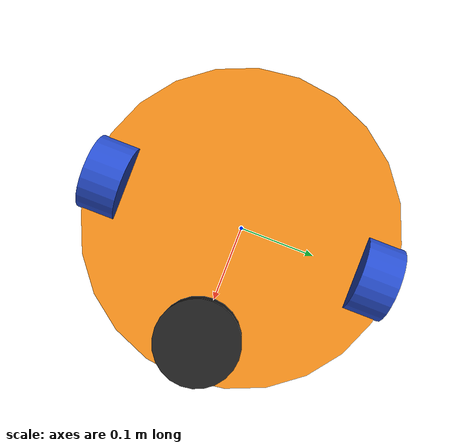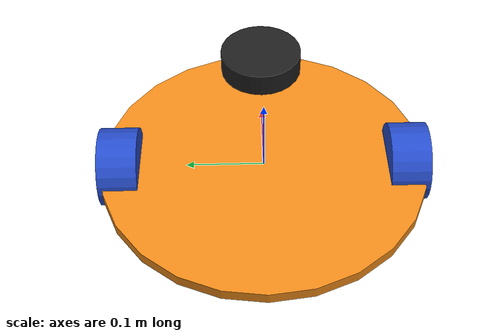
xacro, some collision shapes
<?xml version='1.0'?>

<robot name="jbot" xmlns:xacro="http://www.ros.org/wiki/xacro">

  <xacro:property name="cameraSize" value="0.05"/>
  <xacro:property name="cameraMass" value="0.1"/>

  <xacro:include filename="$(find jbot_description)/urdf/jbot.gazebo" />
  <xacro:include filename="$(find jbot_description)/urdf/materials.xacro" />
  <xacro:include filename="$(find jbot_description)/urdf/macros.xacro" />

  <link name='base_link'>
    <pose>0 0 0.05 0 0 0</pose>

    <inertial>
      <mass value="3.0"/>
      <origin xyz="0.0 0 0.05" rpy=" 0 0 0"/>
      <inertia
          ixx="0.1" ixy="0" ixz="0"
          iyy="0.1" iyz="0"
          izz="0.1"/>
    </inertial>

    <collision name='collision'>
      <geometry>
        <cylinder radius="0.21" length="0.015"/>
      </geometry>
    </collision>

    <visual name='base_link_visual'>
      <origin xyz="0 0 0" rpy=" 0 0 0"/>
      <geometry>
        <cylinder radius="0.21" length="0.015"/>
      </geometry>
    </visual>

    <collision name='caster_collision'>
      <origin xyz="-0.15 0  -0.025" rpy=" 0 0 0"/>
      <geometry>
        <sphere radius="0.025"/>
      </geometry>
      <surface>
        <friction>
          <ode>
            <mu>0</mu>
            <mu2>0</mu2>
            <slip1>1.0</slip1>
            <slip2>1.0</slip2>
          </ode>
        </friction>
      </surface>
    </collision>

    <visual name='caster_visual'>
      <origin xyz="-0.15 0 -0.025" rpy=" 0 0 0"/>
      <geometry>
        <sphere radius="0.025"/>
      </geometry>
    </visual>

    <collision name='caster_front_collision'>
      <origin xyz="0.15 0 -0.025" rpy=" 0 0 0"/>
      <geometry>
        <sphere radius="0.025"/>
      </geometry>
      <surface>
        <friction>
          <ode>
            <mu>0</mu>
            <mu2>0</mu2>
            <slip1>1.0</slip1>
            <slip2>1.0</slip2>
          </ode>
        </friction>
      </surface>
    </collision>

    <visual name='caster_front_visual'>
      <origin xyz="0.15 0 -0.025" rpy=" 0 0 0"/>
      <geometry>
        <sphere radius="0.025"/>
      </geometry>
    </visual>

  </link>

  <link name="left_wheel">
    <!--origin xyz="0.1 0.13 0.1" rpy="0 1.5707 1.5707"/-->
    <collision name="collision">
      <origin xyz="0 0 0" rpy="0 1.5707 1.5707"/>
      <geometry>
        <cylinder radius="0.05" length="0.05"/>
      </geometry>
    </collision>
    <visual name="left_wheel_visual">
      <origin xyz="0 0 0" rpy="0 1.5707 1.5707"/>
      <geometry>
        <cylinder radius="0.05" length="0.05"/>
      </geometry>
    </visual>
    <inertial>
      <origin xyz="0 0 0" rpy="0 1.5707 1.5707"/>
      <mass value="0.5"/>
      <inertia
        ixx=".1" ixy="0.0" ixz="0.0"
        iyy=".1" iyz="0.0"
        izz=".1"/>
    </inertial>
  </link>

  <link name="right_wheel">
    <!--origin xyz="0.1 -0.13 0.1" rpy="0 1.5707 1.5707"/-->
    <collision name="collision">
      <origin xyz="0 0 0" rpy="0 1.5707 1.5707"/>
      <geometry>
        <cylinder radius="0.05" length="0.05"/>
      </geometry>
    </collision>
    <visual name="right_wheel_visual">
      <origin xyz="0 0 0" rpy="0 1.5707 1.5707"/>
      <geometry>
        <cylinder radius="0.05" length="0.05"/>
      </geometry>
    </visual>
    <inertial>
      <origin xyz="0 0 0" rpy="0 1.5707 1.5707"/>
      <mass value="0.5"/>
      <inertia
        ixx=".1" ixy="0.0" ixz="0.0"
        iyy=".1" iyz="0.0"
        izz=".1"/>
    </inertial>
  </link>

  <joint type="continuous" name="left_wheel_hinge">
    <origin xyz="0 0.185 0" rpy="0 0 0"/>
    <!--origin xyz="0.1 0.13 0" rpy="0 1.5707 1.5707"/-->
    <child link="left_wheel"/>
    <parent link="base_link"/>
    <axis xyz="0 1 0" rpy="0 0 0"/>
  </joint>

  <joint type="continuous" name="right_wheel_hinge">
    <origin xyz="0 -0.185 0" rpy="0 0 0"/>
    <!--origin xyz="0.1 -0.13 0" rpy="0 1.5707 1.5707"/-->
    <child link="right_wheel"/>
    <parent link="base_link"/>
    <axis xyz="0 1 0" rpy="0 0 0"/>
  </joint>

  <joint name="scan_joint" type="fixed">
    <parent link="base_link"/>
    <child link="base_scan"/>
    <axis xyz="0 1 0" />
    <origin xyz="0.15 0 0.05" rpy="0 0 0"/>
  </joint>

<!-- LDS01 Laser -->
  <link name="base_scan">
    <visual>
      <origin xyz="0 0 0.0" rpy="0 0 0"/>
      <geometry>
        <mesh filename="package://jbot_description/meshes/lds.stl" scale="0.001 0.001 0.001"/>
      </geometry>
      <material name="dark"/>
    </visual>

    <collision>
      <origin xyz="0 0 0" rpy="0 0 0"/>
      <geometry>
        <cylinder length="0.0315" radius="0.055"/>
      </geometry>
    </collision>

    <inertial>
      <mass value="0.114" />
      <origin xyz="0 0 0" />
      <inertia ixx="0.001" ixy="0.0" ixz="0.0"
               iyy="0.001" iyz="0.0"
               izz="0.001" />
    </inertial>
  </link>

</robot>
